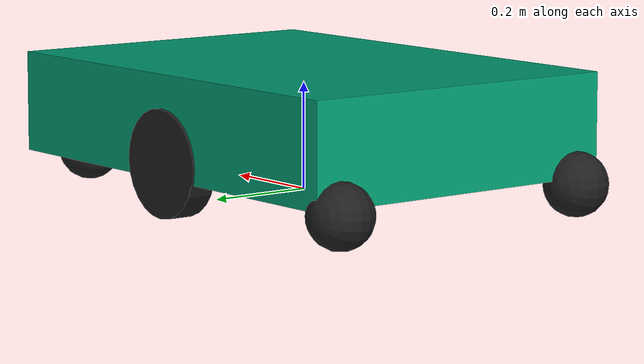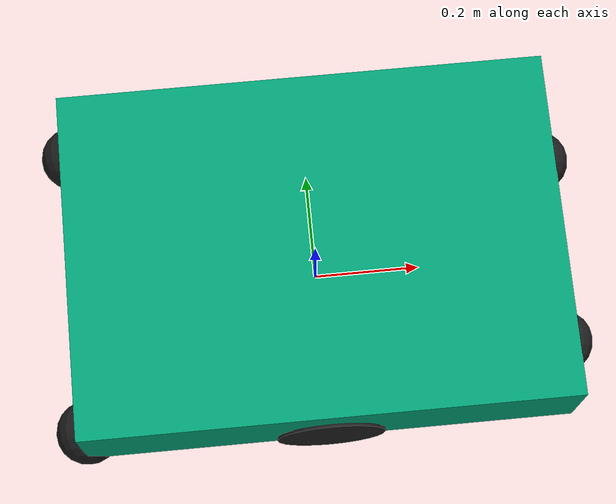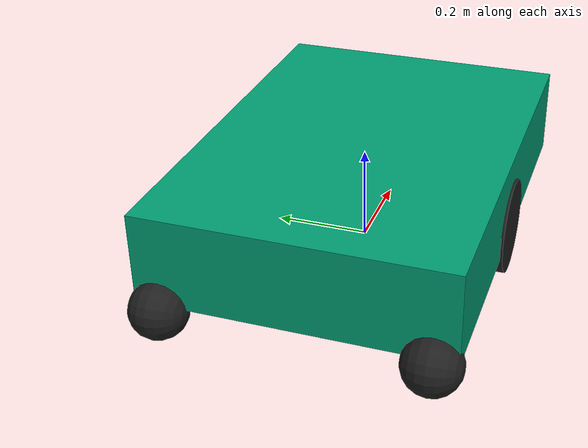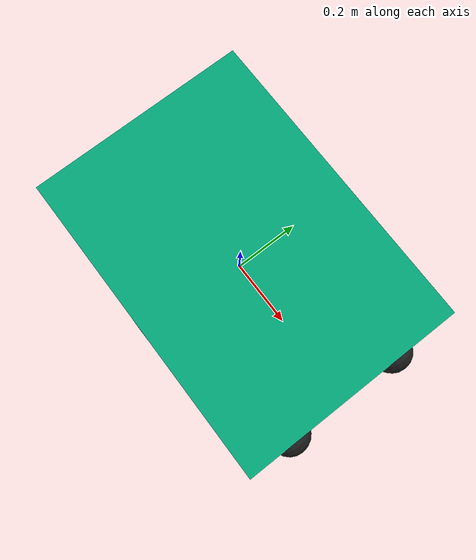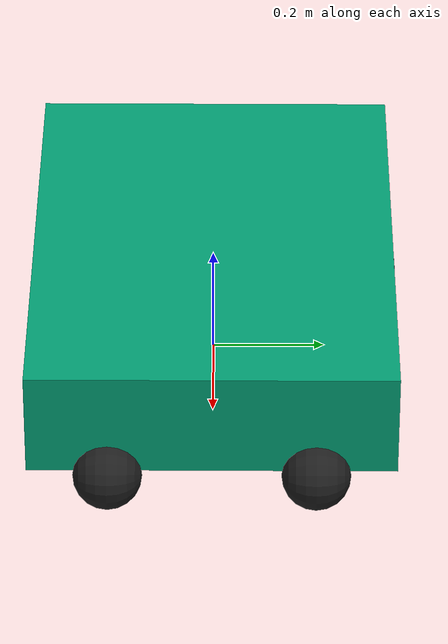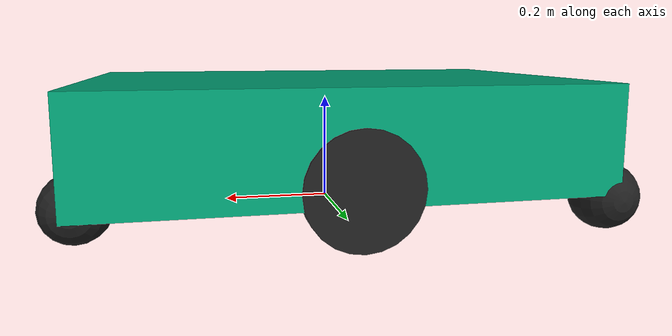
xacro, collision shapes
<?xml version="1.0"?>
<robot xmlns:xacro="http://www.ros.org/wiki/xacro" name="robomuse">

    <!--................................ XACRO CONSTANTS .............................. -->

    <xacro:property name="chassis_mass" value="70"/>
    <xacro:property name="chassis_length" value="0.9"/>
    <xacro:property name="chassis_width" value="0.64"/>
    <xacro:property name="chassis_height" value="0.19"/>

    <xacro:property name="traction_wheel_mass" value="1"/>
    <xacro:property name="traction_wheel_base" value="0.88"/>
    <xacro:property name="traction_max_wheel_torque" value="20000"/>
    <xacro:property name="traction_wheel_friction" value="5.0"/>

    <xacro:property name="trolley_wheel_mass" value="0.1"/>
    <xacro:property name="trolley_track_width" value="0.54"/>
    <xacro:property name="trolley_wheel_friction" value="0.0"/>
    <xacro:property name="trolley_wheel_radius" value="0.06"/>
    <!-- a small constant -->
    <xacro:property name="eps" value="0.002"/>

    <xacro:property name="traction_wheel_radius" value="0.1"/>
    <xacro:property name="traction_wheel_width" value="0.05"/>
    <xacro:property name="traction_track_width" value="0.6"/>

    <xacro:property name="two_d_lidar_update_rate" value="30"/>
    <xacro:property name="two_d_lidar_sample_size" value="361"/>
    <xacro:property name="two_d_lidar_min_angle" value="0"/>
    <xacro:property name="two_d_lidar_max_angle" value="360"/>
    <xacro:property name="two_d_lidar_min_range" value="0.55"/>
    <xacro:property name="two_d_lidar_max_range" value="16"/>

    <xacro:arg name="robot_namespace" default=""/>
    <xacro:arg name="wheel_odom_topic" default="odom" />
    <xacro:arg name="two_d_lidar_enabled" default="false" />
    <xacro:arg name="publish_wheel_odom_tf" default="true" />
    <xacro:arg name="ground_truth_frame" default="map"/>
    <xacro:arg name="sim_gazebo" default="false" />
    <xacro:arg name="sim_gz" default="false" />
    <xacro:arg name="odometry_source" default="world" />

    <xacro:property name="odometry_source" value="$(arg odometry_source)"/>

    <!-- ............................... LOAD MACROS ................................. -->

    <xacro:include filename="$(find robomuse)/urdf/macros.xacro"/>

    <xacro:if value="$(arg sim_gazebo)">
        <xacro:include filename="$(find robomuse)/urdf/gazebo.xacro"/>
    </xacro:if>

    <xacro:if value="$(arg sim_gz)">
        <xacro:include filename="$(find robomuse)/urdf/gz.xacro"/>
    </xacro:if>

    <!-- ................................ BASE LINK .................................. -->
    <link name="base_footprint"/>

    <link name="base_link"/>

    <joint name="base_joint" type="fixed">
        <parent link="base_footprint"/>
        <child link="base_link"/>
        <origin xyz="0.0 0 ${chassis_height/2 + traction_wheel_radius}" rpy="0 0 0.0" />
    </joint>

    <link name="chassis_link">

        <collision>
            <origin xyz="0 0 -0.05" rpy="0 0 0" />
            <geometry>
                <box size="${chassis_length} ${chassis_width} ${chassis_height}"/>
            </geometry>
        </collision>

        <visual>
            <origin xyz="0 0 -0.205" rpy="0 0 0" />
            <geometry>
                <mesh filename="file://$(find robomuse)/meshes/robomuse62.dae" scale="1 1 1"/>
            </geometry>
        </visual>

        <inertial>
            <mass value="${chassis_mass}" />
            <xacro:box_inertia m="${chassis_mass}" x="${chassis_length}" y="${chassis_width}" z = "${chassis_height}"/>
        </inertial>

    </link>

    <joint name="chassis_joint" type="fixed">
        <parent link="base_link"/>
        <child link="chassis_link"/>
        <origin xyz="0.0 0 0" rpy="0 0 0.0" />
    </joint>

    <!-- ................................ WHEELS ..................................... -->

    <xacro:trolley_wheel cardinality="front" dexterity="left" origin_x="${chassis_length/2}" origin_y="${trolley_track_width/3}" origin_z="-${trolley_wheel_radius+chassis_height/2}"/>
    <xacro:trolley_wheel cardinality="front" dexterity="right" origin_x="${chassis_length/2}" origin_y="-${trolley_track_width/3}" origin_z="-${trolley_wheel_radius+chassis_height/2}"/>

    <xacro:trolley_wheel cardinality="back" dexterity="left" origin_x="-${chassis_length/2}" origin_y="${trolley_track_width/2}" origin_z="-${trolley_wheel_radius+chassis_height/2}"/>
    <xacro:trolley_wheel cardinality="back" dexterity="right" origin_x="-${chassis_length/2}" origin_y="-${trolley_track_width/2}" origin_z="-${trolley_wheel_radius+chassis_height/2}"/>

    <xacro:traction_wheel cardinality="middle" dexterity="left" origin_x="0" origin_y="${traction_track_width/2}" origin_z="-${chassis_height/2+2*trolley_wheel_radius+eps-traction_wheel_radius}"/>
    <xacro:traction_wheel cardinality="middle" dexterity="right" origin_x="0" origin_y="-${traction_track_width/2}" origin_z="-${chassis_height/2+2*trolley_wheel_radius+eps-traction_wheel_radius}"/>

    <!-- ............................. 2D LIDAR ........................................ -->

    <xacro:if value="$(arg two_d_lidar_enabled)">

        <link name="two_d_lidar">
            <collision>
                <origin xyz="0 0 0" rpy="0 0 0" />
                <geometry>
                    <cylinder length="0.06" radius="0.075"/>
                </geometry>
            </collision>

            <inertial>
                <origin xyz="0 0 0" rpy="0 0 0" />
                <mass value="0.1"/>
                <xacro:cylinder_inertia m="0.1" r="0.075" h="0.06"/>
            </inertial>
        </link>

        <joint name="two_d_lidar_joint" type="fixed">
            <parent link="base_link"/>
            <child link="two_d_lidar"/>
            <origin xyz="0.35 0 -0.025" rpy="0 0 0" />
        </joint>

        <gazebo reference="two_d_lidar">
            <material>Gazebo/White</material>
        </gazebo>

    </xacro:if>

</robot>

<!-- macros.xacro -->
<robot xmlns:xacro="http://www.ros.org/wiki/xacro" name="robomuse">

    <!--................................ INERTIA MATRICES .............................. -->

    <xacro:macro name="cylinder_inertia" params="m r h">
        <inertia ixx="${m * (3 * r * r + h * h) / 12}" ixy="0" ixz="0" iyy="${m * (3 * r * r + h * h) / 12}" iyz="0" izz="${m * r * r / 2}" />
    </xacro:macro>

    <xacro:macro name="box_inertia" params="m x y z">
        <inertia ixx="${m * (y * y + z * z) / 12}" ixy="0" ixz="0" iyy="${m * (x * x + z * z) / 12}" iyz="0" izz="${m * (y * y + x * x) / 12}" />
    </xacro:macro>

    <xacro:macro name="sphere_inertia" params="m r">
        <inertia ixx="${2 * m * r * r / 5}" ixy="0" ixz="0" iyy="${2 * m * r * r / 5}" iyz="0" izz="${2 * m * r * r / 5}" />
    </xacro:macro>

    <!-- ............................... TROLLEY WHEEL DEFINITION .............................. -->

    <xacro:macro name="trolley_wheel" params="cardinality dexterity origin_x origin_y origin_z">
        <link name="${cardinality}_${dexterity}_wheel">
            <collision>
                <origin xyz="0 0 0" rpy="0 ${pi/2} ${pi/2}" />
                <geometry>
                    <sphere radius="${trolley_wheel_radius}"/>
                </geometry>
            </collision>

            <inertial>
                <origin xyz="0 0 0" rpy="0 0 0" />
                <mass value="${trolley_wheel_mass}"/>
                <xacro:sphere_inertia m="${trolley_wheel_mass}" r="${trolley_wheel_radius}"/>
            </inertial>

            <mu>0.0</mu>
        </link>

        <joint name="${cardinality}_${dexterity}_wheel_joint" type="fixed">
            <parent link="base_link"/>
            <child link="${cardinality}_${dexterity}_wheel"/>
            <origin xyz="${origin_x} ${origin_y} ${origin_z}" rpy="0 0 0" />
            <axis xyz="0 1 0" rpy="0 0 0" />
        </joint>

        <gazebo reference="${cardinality}_${dexterity}_wheel">
            <material>Gazebo/Black</material>
        </gazebo>
    </xacro:macro>

    <xacro:macro name="traction_wheel" params="cardinality dexterity origin_x origin_y origin_z">
        <link name="${cardinality}_${dexterity}_wheel">
            <collision>
                <origin xyz="0 0 0" rpy="0 ${pi/2} ${pi/2}" />
                <geometry>
                    <cylinder length="${traction_wheel_width}" radius="${traction_wheel_radius}"/>
                </geometry>
                <self_collide>false</self_collide>
            </collision>

            <inertial>
                <origin xyz="0 0 0" rpy="0 ${pi/2} ${pi/2}" />
                <mass value="${traction_wheel_mass}"/>
                <xacro:cylinder_inertia m="${traction_wheel_mass}" r="${traction_wheel_radius}" h="${traction_wheel_width}"/>
            </inertial>

            <mu>5.0</mu>
        </link>

        <joint name="${cardinality}_${dexterity}_wheel_joint" type="continuous">
            <parent link="base_link"/>
            <child link="${cardinality}_${dexterity}_wheel"/>
            <origin xyz="${origin_x} ${origin_y} ${origin_z}" rpy="0 0 0" />
            <axis xyz="0 1 0" rpy="0 0 0" />
        </joint>

        <gazebo reference="${cardinality}_${dexterity}_wheel">
            <material>Gazebo/Black</material>
        </gazebo>
    </xacro:macro>

</robot>
